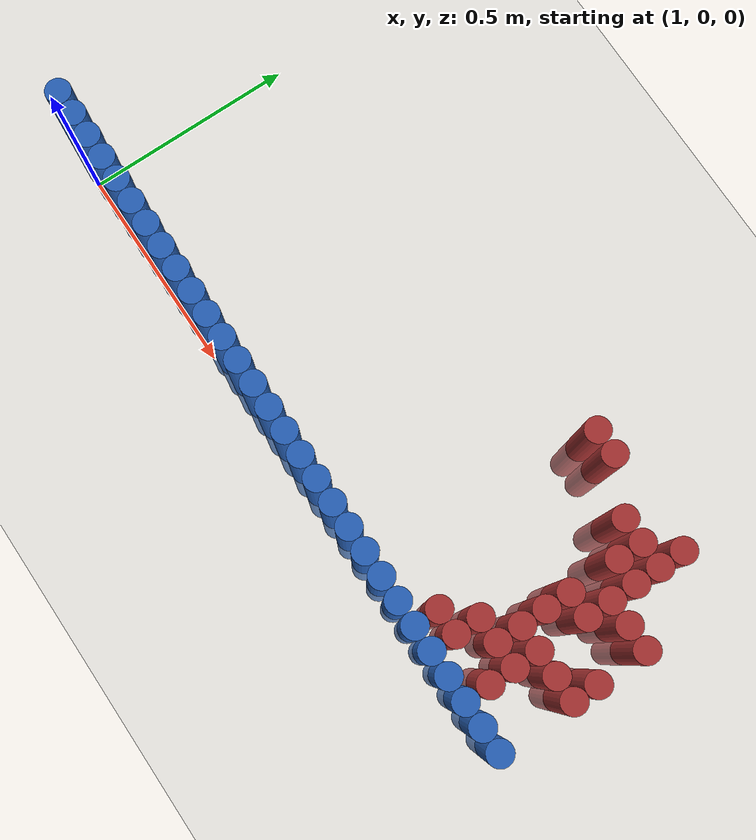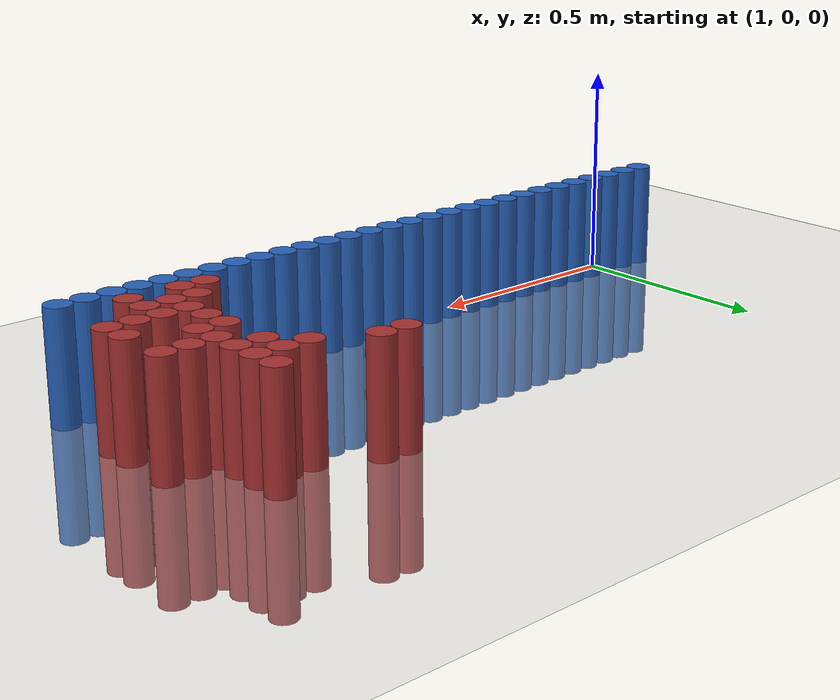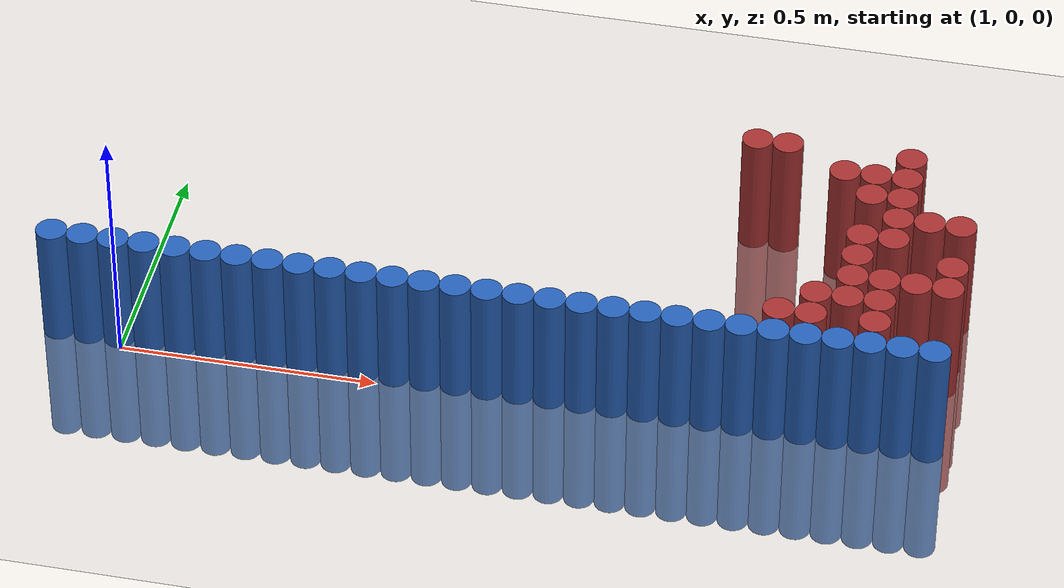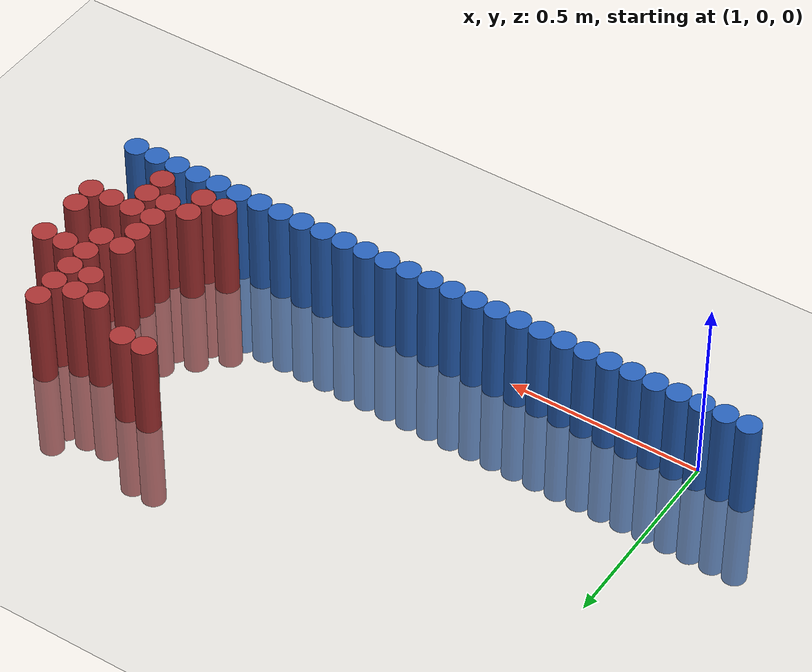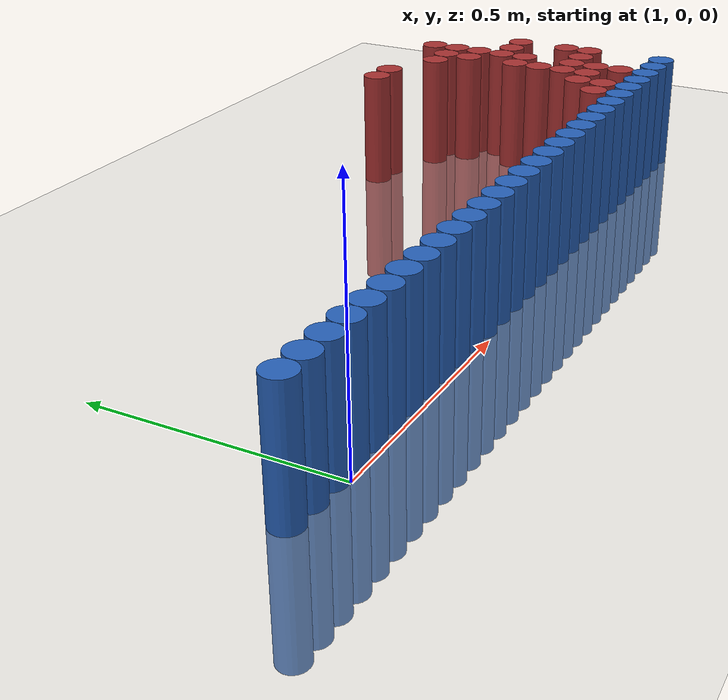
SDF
<sdf version="1.6">
 <world name="default">
  <model name="ground_plane">
   <static>1</static>
   <link name="link">
    <collision name="collision">
     <geometry><plane><normal>0 0 1</normal><size>100 100</size></plane></geometry>
     <surface><friction><ode><mu>100</mu><mu2>50</mu2></ode></friction></surface>
    </collision>
    <visual name="visual">
     <cast_shadows>0</cast_shadows>
     <geometry><plane><normal>0 0 1</normal><size>100 100</size></plane></geometry>
     <material>
      <script><uri>file://media/materials/scripts/gazebo.material</uri><name>Gazebo/Grey</name></script>
     </material>
    </visual>
   </link>
  </model>
  <model name="unit_cylinder_55">
   <static>1</static>
   <pose>0.870000 0.030000 0.000000 0.000000 0.000000 0.000000</pose>
   <link name="link">
    <inertial>
     <mass>1</mass>
     <inertia><ixx>0.145833</ixx><ixy>0</ixy><ixz>0</ixz><iyy>0.145833</iyy><iyz>0</iyz><izz>0.125</izz></inertia>
    </inertial>
    <collision name="collision">
     <geometry><cylinder><radius>0.030000</radius><length>0.5</length></cylinder></geometry>
    </collision>
    <visual name="visual">
     <geometry><cylinder><radius>0.030000</radius><length>0.5</length></cylinder></geometry>
     <material>
      <ambient>0.152000 0.379000 0.720000 1</ambient>
      <diffuse>0.152000 0.379000 0.720000 1</diffuse>
     </material>
     <material>
      <script><name>Gazebo/Grey</name><uri>file://media/materials/scripts/gazebo.material</uri></script>
     </material>
    </visual>
   </link>
  </model>
  <model name="unit_cylinder_57">
   <static>1</static>
   <pose>0.930000 0.030000 0.000000 0.000000 0.000000 0.000000</pose>
   <link name="link">
    <inertial>
     <mass>1</mass>
     <inertia><ixx>0.145833</ixx><ixy>0</ixy><ixz>0</ixz><iyy>0.145833</iyy><iyz>0</iyz><izz>0.125</izz></inertia>
    </inertial>
    <collision name="collision">
     <geometry><cylinder><radius>0.030000</radius><length>0.5</length></cylinder></geometry>
    </collision>
    <visual name="visual">
     <geometry><cylinder><radius>0.030000</radius><length>0.5</length></cylinder></geometry>
     <material>
      <ambient>0.152000 0.379000 0.720000 1</ambient>
      <diffuse>0.152000 0.379000 0.720000 1</diffuse>
     </material>
     <material>
      <script><name>Gazebo/Grey</name><uri>file://media/materials/scripts/gazebo.material</uri></script>
     </material>
    </visual>
   </link>
  </model>
  <model name="unit_cylinder_59">
   <static>1</static>
   <pose>0.990000 0.030000 0.000000 0.000000 0.000000 0.000000</pose>
   <link name="link">
    <inertial>
     <mass>1</mass>
     <inertia><ixx>0.145833</ixx><ixy>0</ixy><ixz>0</ixz><iyy>0.145833</iyy><iyz>0</iyz><izz>0.125</izz></inertia>
    </inertial>
    <collision name="collision">
     <geometry><cylinder><radius>0.030000</radius><length>0.5</length></cylinder></geometry>
    </collision>
    <visual name="visual">
     <geometry><cylinder><radius>0.030000</radius><length>0.5</length></cylinder></geometry>
     <material>
      <ambient>0.152000 0.379000 0.720000 1</ambient>
      <diffuse>0.152000 0.379000 0.720000 1</diffuse>
     </material>
     <material>
      <script><name>Gazebo/Grey</name><uri>file://media/materials/scripts/gazebo.material</uri></script>
     </material>
    </visual>
   </link>
  </model>
  <model name="unit_cylinder_61">
   <static>1</static>
   <pose>1.050000 0.030000 0.000000 0.000000 0.000000 0.000000</pose>
   <link name="link">
    <inertial>
     <mass>1</mass>
     <inertia><ixx>0.145833</ixx><ixy>0</ixy><ixz>0</ixz><iyy>0.145833</iyy><iyz>0</iyz><izz>0.125</izz></inertia>
    </inertial>
    <collision name="collision">
     <geometry><cylinder><radius>0.030000</radius><length>0.5</length></cylinder></geometry>
    </collision>
    <visual name="visual">
     <geometry><cylinder><radius>0.030000</radius><length>0.5</length></cylinder></geometry>
     <material>
      <ambient>0.152000 0.379000 0.720000 1</ambient>
      <diffuse>0.152000 0.379000 0.720000 1</diffuse>
     </material>
     <material>
      <script><name>Gazebo/Grey</name><uri>file://media/materials/scripts/gazebo.material</uri></script>
     </material>
    </visual>
   </link>
  </model>
  <model name="unit_cylinder_63">
   <static>1</static>
   <pose>1.110000 0.030000 0.000000 0.000000 0.000000 0.000000</pose>
   <link name="link">
    <inertial>
     <mass>1</mass>
     <inertia><ixx>0.145833</ixx><ixy>0</ixy><ixz>0</ixz><iyy>0.145833</iyy><iyz>0</iyz><izz>0.125</izz></inertia>
    </inertial>
    <collision name="collision">
     <geometry><cylinder><radius>0.030000</radius><length>0.5</length></cylinder></geometry>
    </collision>
    <visual name="visual">
     <geometry><cylinder><radius>0.030000</radius><length>0.5</length></cylinder></geometry>
     <material>
      <ambient>0.152000 0.379000 0.720000 1</ambient>
      <diffuse>0.152000 0.379000 0.720000 1</diffuse>
     </material>
     <material>
      <script><name>Gazebo/Grey</name><uri>file://media/materials/scripts/gazebo.material</uri></script>
     </material>
    </visual>
   </link>
  </model>
  <model name="unit_cylinder_65">
   <static>1</static>
   <pose>1.170000 0.030000 0.000000 0.000000 0.000000 0.000000</pose>
   <link name="link">
    <inertial>
     <mass>1</mass>
     <inertia><ixx>0.145833</ixx><ixy>0</ixy><ixz>0</ixz><iyy>0.145833</iyy><iyz>0</iyz><izz>0.125</izz></inertia>
    </inertial>
    <collision name="collision">
     <geometry><cylinder><radius>0.030000</radius><length>0.5</length></cylinder></geometry>
    </collision>
    <visual name="visual">
     <geometry><cylinder><radius>0.030000</radius><length>0.5</length></cylinder></geometry>
     <material>
      <ambient>0.152000 0.379000 0.720000 1</ambient>
      <diffuse>0.152000 0.379000 0.720000 1</diffuse>
     </material>
     <material>
      <script><name>Gazebo/Grey</name><uri>file://media/materials/scripts/gazebo.material</uri></script>
     </material>
    </visual>
   </link>
  </model>
  <model name="unit_cylinder_67">
   <static>1</static>
   <pose>1.230000 0.030000 0.000000 0.000000 0.000000 0.000000</pose>
   <link name="link">
    <inertial>
     <mass>1</mass>
     <inertia><ixx>0.145833</ixx><ixy>0</ixy><ixz>0</ixz><iyy>0.145833</iyy><iyz>0</iyz><izz>0.125</izz></inertia>
    </inertial>
    <collision name="collision">
     <geometry><cylinder><radius>0.030000</radius><length>0.5</length></cylinder></geometry>
    </collision>
    <visual name="visual">
     <geometry><cylinder><radius>0.030000</radius><length>0.5</length></cylinder></geometry>
     <material>
      <ambient>0.152000 0.379000 0.720000 1</ambient>
      <diffuse>0.152000 0.379000 0.720000 1</diffuse>
     </material>
     <material>
      <script><name>Gazebo/Grey</name><uri>file://media/materials/scripts/gazebo.material</uri></script>
     </material>
    </visual>
   </link>
  </model>
  <model name="unit_cylinder_69">
   <static>1</static>
   <pose>1.290000 0.030000 0.000000 0.000000 0.000000 0.000000</pose>
   <link name="link">
    <inertial>
     <mass>1</mass>
     <inertia><ixx>0.145833</ixx><ixy>0</ixy><ixz>0</ixz><iyy>0.145833</iyy><iyz>0</iyz><izz>0.125</izz></inertia>
    </inertial>
    <collision name="collision">
     <geometry><cylinder><radius>0.030000</radius><length>0.5</length></cylinder></geometry>
    </collision>
    <visual name="visual">
     <geometry><cylinder><radius>0.030000</radius><length>0.5</length></cylinder></geometry>
     <material>
      <ambient>0.152000 0.379000 0.720000 1</ambient>
      <diffuse>0.152000 0.379000 0.720000 1</diffuse>
     </material>
     <material>
      <script><name>Gazebo/Grey</name><uri>file://media/materials/scripts/gazebo.material</uri></script>
     </material>
    </visual>
   </link>
  </model>
  <model name="unit_cylinder_71">
   <static>1</static>
   <pose>1.350000 0.030000 0.000000 0.000000 0.000000 0.000000</pose>
   <link name="link">
    <inertial>
     <mass>1</mass>
     <inertia><ixx>0.145833</ixx><ixy>0</ixy><ixz>0</ixz><iyy>0.145833</iyy><iyz>0</iyz><izz>0.125</izz></inertia>
    </inertial>
    <collision name="collision">
     <geometry><cylinder><radius>0.030000</radius><length>0.5</length></cylinder></geometry>
    </collision>
    <visual name="visual">
     <geometry><cylinder><radius>0.030000</radius><length>0.5</length></cylinder></geometry>
     <material>
      <ambient>0.152000 0.379000 0.720000 1</ambient>
      <diffuse>0.152000 0.379000 0.720000 1</diffuse>
     </material>
     <material>
      <script><name>Gazebo/Grey</name><uri>file://media/materials/scripts/gazebo.material</uri></script>
     </material>
    </visual>
   </link>
  </model>
  <model name="unit_cylinder_73">
   <static>1</static>
   <pose>1.410000 0.030000 0.000000 0.000000 0.000000 0.000000</pose>
   <link name="link">
    <inertial>
     <mass>1</mass>
     <inertia><ixx>0.145833</ixx><ixy>0</ixy><ixz>0</ixz><iyy>0.145833</iyy><iyz>0</iyz><izz>0.125</izz></inertia>
    </inertial>
    <collision name="collision">
     <geometry><cylinder><radius>0.030000</radius><length>0.5</length></cylinder></geometry>
    </collision>
    <visual name="visual">
     <geometry><cylinder><radius>0.030000</radius><length>0.5</length></cylinder></geometry>
     <material>
      <ambient>0.152000 0.379000 0.720000 1</ambient>
      <diffuse>0.152000 0.379000 0.720000 1</diffuse>
     </material>
     <material>
      <script><name>Gazebo/Grey</name><uri>file://media/materials/scripts/gazebo.material</uri></script>
     </material>
    </visual>
   </link>
  </model>
  <model name="unit_cylinder_75">
   <static>1</static>
   <pose>1.470000 0.030000 0.000000 0.000000 0.000000 0.000000</pose>
   <link name="link">
    <inertial>
     <mass>1</mass>
     <inertia><ixx>0.145833</ixx><ixy>0</ixy><ixz>0</ixz><iyy>0.145833</iyy><iyz>0</iyz><izz>0.125</izz></inertia>
    </inertial>
    <collision name="collision">
     <geometry><cylinder><radius>0.030000</radius><length>0.5</length></cylinder></geometry>
    </collision>
    <visual name="visual">
     <geometry><cylinder><radius>0.030000</radius><length>0.5</length></cylinder></geometry>
     <material>
      <ambient>0.152000 0.379000 0.720000 1</ambient>
      <diffuse>0.152000 0.379000 0.720000 1</diffuse>
     </material>
     <material>
      <script><name>Gazebo/Grey</name><uri>file://media/materials/scripts/gazebo.material</uri></script>
     </material>
    </visual>
   </link>
  </model>
  <model name="unit_cylinder_77">
   <static>1</static>
   <pose>1.530000 0.030000 0.000000 0.000000 0.000000 0.000000</pose>
   <link name="link">
    <inertial>
     <mass>1</mass>
     <inertia><ixx>0.145833</ixx><ixy>0</ixy><ixz>0</ixz><iyy>0.145833</iyy><iyz>0</iyz><izz>0.125</izz></inertia>
    </inertial>
    <collision name="collision">
     <geometry><cylinder><radius>0.030000</radius><length>0.5</length></cylinder></geometry>
    </collision>
    <visual name="visual">
     <geometry><cylinder><radius>0.030000</radius><length>0.5</length></cylinder></geometry>
     <material>
      <ambient>0.152000 0.379000 0.720000 1</ambient>
      <diffuse>0.152000 0.379000 0.720000 1</diffuse>
     </material>
     <material>
      <script><name>Gazebo/Grey</name><uri>file://media/materials/scripts/gazebo.material</uri></script>
     </material>
    </visual>
   </link>
  </model>
  <model name="unit_cylinder_79">
   <static>1</static>
   <pose>1.590000 0.030000 0.000000 0.000000 0.000000 0.000000</pose>
   <link name="link">
    <inertial>
     <mass>1</mass>
     <inertia><ixx>0.145833</ixx><ixy>0</ixy><ixz>0</ixz><iyy>0.145833</iyy><iyz>0</iyz><izz>0.125</izz></inertia>
    </inertial>
    <collision name="collision">
     <geometry><cylinder><radius>0.030000</radius><length>0.5</length></cylinder></geometry>
    </collision>
    <visual name="visual">
     <geometry><cylinder><radius>0.030000</radius><length>0.5</length></cylinder></geometry>
     <material>
      <ambient>0.152000 0.379000 0.720000 1</ambient>
      <diffuse>0.152000 0.379000 0.720000 1</diffuse>
     </material>
     <material>
      <script><name>Gazebo/Grey</name><uri>file://media/materials/scripts/gazebo.material</uri></script>
     </material>
    </visual>
   </link>
  </model>
  <model name="unit_cylinder_81">
   <static>1</static>
   <pose>1.650000 0.030000 0.000000 0.000000 0.000000 0.000000</pose>
   <link name="link">
    <inertial>
     <mass>1</mass>
     <inertia><ixx>0.145833</ixx><ixy>0</ixy><ixz>0</ixz><iyy>0.145833</iyy><iyz>0</iyz><izz>0.125</izz></inertia>
    </inertial>
    <collision name="collision">
     <geometry><cylinder><radius>0.030000</radius><length>0.5</length></cylinder></geometry>
    </collision>
    <visual name="visual">
     <geometry><cylinder><radius>0.030000</radius><length>0.5</length></cylinder></geometry>
     <material>
      <ambient>0.152000 0.379000 0.720000 1</ambient>
      <diffuse>0.152000 0.379000 0.720000 1</diffuse>
     </material>
     <material>
      <script><name>Gazebo/Grey</name><uri>file://media/materials/scripts/gazebo.material</uri></script>
     </material>
    </visual>
   </link>
  </model>
  <model name="unit_cylinder_83">
   <static>1</static>
   <pose>1.710000 0.030000 0.000000 0.000000 0.000000 0.000000</pose>
   <link name="link">
    <inertial>
     <mass>1</mass>
     <inertia><ixx>0.145833</ixx><ixy>0</ixy><ixz>0</ixz><iyy>0.145833</iyy><iyz>0</iyz><izz>0.125</izz></inertia>
    </inertial>
    <collision name="collision">
     <geometry><cylinder><radius>0.030000</radius><length>0.5</length></cylinder></geometry>
    </collision>
    <visual name="visual">
     <geometry><cylinder><radius>0.030000</radius><length>0.5</length></cylinder></geometry>
     <material>
      <ambient>0.152000 0.379000 0.720000 1</ambient>
      <diffuse>0.152000 0.379000 0.720000 1</diffuse>
     </material>
     <material>
      <script><name>Gazebo/Grey</name><uri>file://media/materials/scripts/gazebo.material</uri></script>
     </material>
    </visual>
   </link>
  </model>
  <model name="unit_cylinder_85">
   <static>1</static>
   <pose>1.770000 0.030000 0.000000 0.000000 0.000000 0.000000</pose>
   <link name="link">
    <inertial>
     <mass>1</mass>
     <inertia><ixx>0.145833</ixx><ixy>0</ixy><ixz>0</ixz><iyy>0.145833</iyy><iyz>0</iyz><izz>0.125</izz></inertia>
    </inertial>
    <collision name="collision">
     <geometry><cylinder><radius>0.030000</radius><length>0.5</length></cylinder></geometry>
    </collision>
    <visual name="visual">
     <geometry><cylinder><radius>0.030000</radius><length>0.5</length></cylinder></geometry>
     <material>
      <ambient>0.152000 0.379000 0.720000 1</ambient>
      <diffuse>0.152000 0.379000 0.720000 1</diffuse>
     </material>
     <material>
      <script><name>Gazebo/Grey</name><uri>file://media/materials/scripts/gazebo.material</uri></script>
     </material>
    </visual>
   </link>
  </model>
  <model name="unit_cylinder_87">
   <static>1</static>
   <pose>1.830000 0.030000 0.000000 0.000000 0.000000 0.000000</pose>
   <link name="link">
    <inertial>
     <mass>1</mass>
     <inertia><ixx>0.145833</ixx><ixy>0</ixy><ixz>0</ixz><iyy>0.145833</iyy><iyz>0</iyz><izz>0.125</izz></inertia>
    </inertial>
    <collision name="collision">
     <geometry><cylinder><radius>0.030000</radius><length>0.5</length></cylinder></geometry>
    </collision>
    <visual name="visual">
     <geometry><cylinder><radius>0.030000</radius><length>0.5</length></cylinder></geometry>
     <material>
      <ambient>0.152000 0.379000 0.720000 1</ambient>
      <diffuse>0.152000 0.379000 0.720000 1</diffuse>
     </material>
     <material>
      <script><name>Gazebo/Grey</name><uri>file://media/materials/scripts/gazebo.material</uri></script>
     </material>
    </visual>
   </link>
  </model>
  <model name="unit_cylinder_89">
   <static>1</static>
   <pose>1.890000 0.030000 0.000000 0.000000 0.000000 0.000000</pose>
   <link name="link">
    <inertial>
     <mass>1</mass>
     <inertia><ixx>0.145833</ixx><ixy>0</ixy><ixz>0</ixz><iyy>0.145833</iyy><iyz>0</iyz><izz>0.125</izz></inertia>
    </inertial>
    <collision name="collision">
     <geometry><cylinder><radius>0.030000</radius><length>0.5</length></cylinder></geometry>
    </collision>
    <visual name="visual">
     <geometry><cylinder><radius>0.030000</radius><length>0.5</length></cylinder></geometry>
     <material>
      <ambient>0.152000 0.379000 0.720000 1</ambient>
      <diffuse>0.152000 0.379000 0.720000 1</diffuse>
     </material>
     <material>
      <script><name>Gazebo/Grey</name><uri>file://media/materials/scripts/gazebo.material</uri></script>
     </material>
    </visual>
   </link>
  </model>
  <model name="unit_cylinder_91">
   <static>1</static>
   <pose>1.950000 0.030000 0.000000 0.000000 0.000000 0.000000</pose>
   <link name="link">
    <inertial>
     <mass>1</mass>
     <inertia><ixx>0.145833</ixx><ixy>0</ixy><ixz>0</ixz><iyy>0.145833</iyy><iyz>0</iyz><izz>0.125</izz></inertia>
    </inertial>
    <collision name="collision">
     <geometry><cylinder><radius>0.030000</radius><length>0.5</length></cylinder></geometry>
    </collision>
    <visual name="visual">
     <geometry><cylinder><radius>0.030000</radius><length>0.5</length></cylinder></geometry>
     <material>
      <ambient>0.152000 0.379000 0.720000 1</ambient>
      <diffuse>0.152000 0.379000 0.720000 1</diffuse>
     </material>
     <material>
      <script><name>Gazebo/Grey</name><uri>file://media/materials/scripts/gazebo.material</uri></script>
     </material>
    </visual>
   </link>
  </model>
  <model name="unit_cylinder_93">
   <static>1</static>
   <pose>2.010000 0.030000 0.000000 0.000000 0.000000 0.000000</pose>
   <link name="link">
    <inertial>
     <mass>1</mass>
     <inertia><ixx>0.145833</ixx><ixy>0</ixy><ixz>0</ixz><iyy>0.145833</iyy><iyz>0</iyz><izz>0.125</izz></inertia>
    </inertial>
    <collision name="collision">
     <geometry><cylinder><radius>0.030000</radius><length>0.5</length></cylinder></geometry>
    </collision>
    <visual name="visual">
     <geometry><cylinder><radius>0.030000</radius><length>0.5</length></cylinder></geometry>
     <material>
      <ambient>0.152000 0.379000 0.720000 1</ambient>
      <diffuse>0.152000 0.379000 0.720000 1</diffuse>
     </material>
     <material>
      <script><name>Gazebo/Grey</name><uri>file://media/materials/scripts/gazebo.material</uri></script>
     </material>
    </visual>
   </link>
  </model>
  <model name="unit_cylinder_224">
   <static>1</static>
   <pose>2.130000 0.570000 0.000000 0.000000 0.000000 0.000000</pose>
   <link name="link">
    <inertial>
     <mass>1</mass>
     <inertia><ixx>0.145833</ixx><ixy>0</ixy><ixz>0</ixz><iyy>0.145833</iyy><iyz>0</iyz><izz>0.125</izz></inertia>
    </inertial>
    <collision name="collision">
     <geometry><cylinder><radius>0.030000</radius><length>0.5</length></cylinder></geometry>
    </collision>
    <visual name="visual">
     <geometry><cylinder><radius>0.030000</radius><length>0.5</length></cylinder></geometry>
     <material>
      <ambient>0.648000 0.192000 0.192000 1</ambient>
      <diffuse>0.648000 0.192000 0.192000 1</diffuse>
     </material>
     <material>
      <script><name>Gazebo/Grey</name><uri>file://media/materials/scripts/gazebo.material</uri></script>
     </material>
    </visual>
   </link>
  </model>
  <model name="unit_cylinder_225">
   <static>1</static>
   <pose>2.190000 0.570000 0.000000 0.000000 0.000000 0.000000</pose>
   <link name="link">
    <inertial>
     <mass>1</mass>
     <inertia><ixx>0.145833</ixx><ixy>0</ixy><ixz>0</ixz><iyy>0.145833</iyy><iyz>0</iyz><izz>0.125</izz></inertia>
    </inertial>
    <collision name="collision">
     <geometry><cylinder><radius>0.030000</radius><length>0.5</length></cylinder></geometry>
    </collision>
    <visual name="visual">
     <geometry><cylinder><radius>0.030000</radius><length>0.5</length></cylinder></geometry>
     <material>
      <ambient>0.648000 0.192000 0.192000 1</ambient>
      <diffuse>0.648000 0.192000 0.192000 1</diffuse>
     </material>
     <material>
      <script><name>Gazebo/Grey</name><uri>file://media/materials/scripts/gazebo.material</uri></script>
     </material>
    </visual>
   </link>
  </model>
  <model name="unit_cylinder_226">
   <static>1</static>
   <pose>2.430000 0.570000 0.000000 0.000000 0.000000 0.000000</pose>
   <link name="link">
    <inertial>
     <mass>1</mass>
     <inertia><ixx>0.145833</ixx><ixy>0</ixy><ixz>0</ixz><iyy>0.145833</iyy><iyz>0</iyz><izz>0.125</izz></inertia>
    </inertial>
    <collision name="collision">
     <geometry><cylinder><radius>0.030000</radius><length>0.5</length></cylinder></geometry>
    </collision>
    <visual name="visual">
     <geometry><cylinder><radius>0.030000</radius><length>0.5</length></cylinder></geometry>
     <material>
      <ambient>0.648000 0.192000 0.192000 1</ambient>
      <diffuse>0.648000 0.192000 0.192000 1</diffuse>
     </material>
     <material>
      <script><name>Gazebo/Grey</name><uri>file://media/materials/scripts/gazebo.material</uri></script>
     </material>
    </visual>
   </link>
  </model>
  <model name="unit_cylinder_237">
   <static>1</static>
   <pose>2.310000 0.510000 0.000000 0.000000 0.000000 0.000000</pose>
   <link name="link">
    <inertial>
     <mass>1</mass>
     <inertia><ixx>0.145833</ixx><ixy>0</ixy><ixz>0</ixz><iyy>0.145833</iyy><iyz>0</iyz><izz>0.125</izz></inertia>
    </inertial>
    <collision name="collision">
     <geometry><cylinder><radius>0.030000</radius><length>0.5</length></cylinder></geometry>
    </collision>
    <visual name="visual">
     <geometry><cylinder><radius>0.030000</radius><length>0.5</length></cylinder></geometry>
     <material>
      <ambient>0.648000 0.192000 0.192000 1</ambient>
      <diffuse>0.648000 0.192000 0.192000 1</diffuse>
     </material>
     <material>
      <script><name>Gazebo/Grey</name><uri>file://media/materials/scripts/gazebo.material</uri></script>
     </material>
    </visual>
   </link>
  </model>
  <model name="unit_cylinder_238">
   <static>1</static>
   <pose>2.370000 0.510000 0.000000 0.000000 0.000000 0.000000</pose>
   <link name="link">
    <inertial>
     <mass>1</mass>
     <inertia><ixx>0.145833</ixx><ixy>0</ixy><ixz>0</ixz><iyy>0.145833</iyy><iyz>0</iyz><izz>0.125</izz></inertia>
    </inertial>
    <collision name="collision">
     <geometry><cylinder><radius>0.030000</radius><length>0.5</length></cylinder></geometry>
    </collision>
    <visual name="visual">
     <geometry><cylinder><radius>0.030000</radius><length>0.5</length></cylinder></geometry>
     <material>
      <ambient>0.648000 0.192000 0.192000 1</ambient>
      <diffuse>0.648000 0.192000 0.192000 1</diffuse>
     </material>
     <material>
      <script><name>Gazebo/Grey</name><uri>file://media/materials/scripts/gazebo.material</uri></script>
     </material>
    </visual>
   </link>
  </model>
  <model name="unit_cylinder_239">
   <static>1</static>
   <pose>2.430000 0.510000 0.000000 0.000000 0.000000 0.000000</pose>
   <link name="link">
    <inertial>
     <mass>1</mass>
     <inertia><ixx>0.145833</ixx><ixy>0</ixy><ixz>0</ixz><iyy>0.145833</iyy><iyz>0</iyz><izz>0.125</izz></inertia>
    </inertial>
    <collision name="collision">
     <geometry><cylinder><radius>0.030000</radius><length>0.5</length></cylinder></geometry>
    </collision>
    <visual name="visual">
     <geometry><cylinder><radius>0.030000</radius><length>0.5</length></cylinder></geometry>
     <material>
      <ambient>0.648000 0.192000 0.192000 1</ambient>
      <diffuse>0.648000 0.192000 0.192000 1</diffuse>
     </material>
     <material>
      <script><name>Gazebo/Grey</name><uri>file://media/materials/scripts/gazebo.material</uri></script>
     </material>
    </visual>
   </link>
  </model>
  <model name="unit_cylinder_245">
   <static>1</static>
   <pose>2.370000 0.450000 0.000000 0.000000 0.000000 0.000000</pose>
   <link name="link">
    <inertial>
     <mass>1</mass>
     <inertia><ixx>0.145833</ixx><ixy>0</ixy><ixz>0</ixz><iyy>0.145833</iyy><iyz>0</iyz><izz>0.125</izz></inertia>
    </inertial>
    <collision name="collision">
     <geometry><cylinder><radius>0.030000</radius><length>0.5</length></cylinder></geometry>
    </collision>
    <visual name="visual">
     <geometry><cylinder><radius>0.030000</radius><length>0.5</length></cylinder></geometry>
     <material>
      <ambient>0.648000 0.192000 0.192000 1</ambient>
      <diffuse>0.648000 0.192000 0.192000 1</diffuse>
     </material>
     <material>
      <script><name>Gazebo/Grey</name><uri>file://media/materials/scripts/gazebo.material</uri></script>
     </material>
    </visual>
   </link>
  </model>
  <model name="unit_cylinder_246">
   <static>1</static>
   <pose>2.430000 0.450000 0.000000 0.000000 0.000000 0.000000</pose>
   <link name="link">
    <inertial>
     <mass>1</mass>
     <inertia><ixx>0.145833</ixx><ixy>0</ixy><ixz>0</ixz><iyy>0.145833</iyy><iyz>0</iyz><izz>0.125</izz></inertia>
    </inertial>
    <collision name="collision">
     <geometry><cylinder><radius>0.030000</radius><length>0.5</length></cylinder></geometry>
    </collision>
    <visual name="visual">
     <geometry><cylinder><radius>0.030000</radius><length>0.5</length></cylinder></geometry>
     <material>
      <ambient>0.648000 0.192000 0.192000 1</ambient>
      <diffuse>0.648000 0.192000 0.192000 1</diffuse>
     </material>
     <material>
      <script><name>Gazebo/Grey</name><uri>file://media/materials/scripts/gazebo.material</uri></script>
     </material>
    </visual>
   </link>
  </model>
  <model name="unit_cylinder_251">
   <static>1</static>
   <pose>2.430000 0.390000 0.000000 0.000000 0.000000 0.000000</pose>
   <link name="link">
    <inertial>
     <mass>1</mass>
     <inertia><ixx>0.145833</ixx><ixy>0</ixy><ixz>0</ixz><iyy>0.145833</iyy><iyz>0</iyz><izz>0.125</izz></inertia>
    </inertial>
    <collision name="collision">
     <geometry><cylinder><radius>0.030000</radius><length>0.5</length></cylinder></geometry>
    </collision>
    <visual name="visual">
     <geometry><cylinder><radius>0.030000</radius><length>0.5</length></cylinder></geometry>
     <material>
      <ambient>0.648000 0.192000 0.192000 1</ambient>
      <diffuse>0.648000 0.192000 0.192000 1</diffuse>
     </material>
     <material>
      <script><name>Gazebo/Grey</name><uri>file://media/materials/scripts/gazebo.material</uri></script>
     </material>
    </visual>
   </link>
  </model>
  <model name="unit_cylinder_252">
   <static>1</static>
   <pose>2.490000 0.390000 0.000000 0.000000 0.000000 0.000000</pose>
   <link name="link">
    <inertial>
     <mass>1</mass>
     <inertia><ixx>0.145833</ixx><ixy>0</ixy><ixz>0</ixz><iyy>0.145833</iyy><iyz>0</iyz><izz>0.125</izz></inertia>
    </inertial>
    <collision name="collision">
     <geometry><cylinder><radius>0.030000</radius><length>0.5</length></cylinder></geometry>
    </collision>
    <visual name="visual">
     <geometry><cylinder><radius>0.030000</radius><length>0.5</length></cylinder></geometry>
     <material>
      <ambient>0.648000 0.192000 0.192000 1</ambient>
      <diffuse>0.648000 0.192000 0.192000 1</diffuse>
     </material>
     <material>
      <script><name>Gazebo/Grey</name><uri>file://media/materials/scripts/gazebo.material</uri></script>
     </material>
    </visual>
   </link>
  </model>
  <model name="unit_cylinder_253">
   <static>1</static>
   <pose>2.550000 0.390000 0.000000 0.000000 0.000000 0.000000</pose>
   <link name="link">
    <inertial>
     <mass>1</mass>
     <inertia><ixx>0.145833</ixx><ixy>0</ixy><ixz>0</ixz><iyy>0.145833</iyy><iyz>0</iyz><izz>0.125</izz></inertia>
    </inertial>
    <collision name="collision">
     <geometry><cylinder><radius>0.030000</radius><length>0.5</length></cylinder></geometry>
    </collision>
    <visual name="visual">
     <geometry><cylinder><radius>0.030000</radius><length>0.5</length></cylinder></geometry>
     <material>
      <ambient>0.648000 0.192000 0.192000 1</ambient>
      <diffuse>0.648000 0.192000 0.192000 1</diffuse>
     </material>
     <material>
      <script><name>Gazebo/Grey</name><uri>file://media/materials/scripts/gazebo.material</uri></script>
     </material>
    </visual>
   </link>
  </model>
  <model name="unit_cylinder_257">
   <static>1</static>
   <pose>2.370000 0.330000 0.000000 0.000000 0.000000 0.000000</pose>
   <link name="link">
    <inertial>
     <mass>1</mass>
     <inertia><ixx>0.145833</ixx><ixy>0</ixy><ixz>0</ixz><iyy>0.145833</iyy><iyz>0</iyz><izz>0.125</izz></inertia>
    </inertial>
    <collision name="collision">
     <geometry><cylinder><radius>0.030000</radius><length>0.5</length></cylinder></geometry>
    </collision>
    <visual name="visual">
     <geometry><cylinder><radius>0.030000</radius><length>0.5</length></cylinder></geometry>
     <material>
      <ambient>0.648000 0.192000 0.192000 1</ambient>
      <diffuse>0.648000 0.192000 0.192000 1</diffuse>
     </material>
     <material>
      <script><name>Gazebo/Grey</name><uri>file://media/materials/scripts/gazebo.material</uri></script>
     </material>
    </visual>
   </link>
  </model>
  <model name="unit_cylinder_258">
   <static>1</static>
   <pose>2.430000 0.330000 0.000000 0.000000 0.000000 0.000000</pose>
   <link name="link">
    <inertial>
     <mass>1</mass>
     <inertia><ixx>0.145833</ixx><ixy>0</ixy><ixz>0</ixz><iyy>0.145833</iyy><iyz>0</iyz><izz>0.125</izz></inertia>
    </inertial>
    <collision name="collision">
     <geometry><cylinder><radius>0.030000</radius><length>0.5</length></cylinder></geometry>
    </collision>
    <visual name="visual">
     <geometry><cylinder><radius>0.030000</radius><length>0.5</length></cylinder></geometry>
     <material>
      <ambient>0.648000 0.192000 0.192000 1</ambient>
      <diffuse>0.648000 0.192000 0.192000 1</diffuse>
     </material>
     <material>
      <script><name>Gazebo/Grey</name><uri>file://media/materials/scripts/gazebo.material</uri></script>
     </material>
    </visual>
   </link>
  </model>
  <model name="unit_cylinder_261">
   <static>1</static>
   <pose>2.370000 0.270000 0.000000 0.000000 0.000000 0.000000</pose>
   <link name="link">
    <inertial>
     <mass>1</mass>
     <inertia><ixx>0.145833</ixx><ixy>0</ixy><ixz>0</ixz><iyy>0.145833</iyy><iyz>0</iyz><izz>0.125</izz></inertia>
    </inertial>
    <collision name="collision">
     <geometry><cylinder><radius>0.030000</radius><length>0.5</length></cylinder></geometry>
    </collision>
    <visual name="visual">
     <geometry><cylinder><radius>0.030000</radius><length>0.5</length></cylinder></geometry>
     <material>
      <ambient>0.648000 0.192000 0.192000 1</ambient>
      <diffuse>0.648000 0.192000 0.192000 1</diffuse>
     </material>
     <material>
      <script><name>Gazebo/Grey</name><uri>file://media/materials/scripts/gazebo.material</uri></script>
     </material>
    </visual>
   </link>
  </model>
  <model name="unit_cylinder_262">
   <static>1</static>
   <pose>2.550000 0.270000 0.000000 0.000000 0.000000 0.000000</pose>
   <link name="link">
    <inertial>
     <mass>1</mass>
     <inertia><ixx>0.145833</ixx><ixy>0</ixy><ixz>0</ixz><iyy>0.145833</iyy><iyz>0</iyz><izz>0.125</izz></inertia>
    </inertial>
    <collision name="collision">
     <geometry><cylinder><radius>0.030000</radius><length>0.5</length></cylinder></geometry>
    </collision>
    <visual name="visual">
     <geometry><cylinder><radius>0.030000</radius><length>0.5</length></cylinder></geometry>
     <material>
      <ambient>0.648000 0.192000 0.192000 1</ambient>
      <diffuse>0.648000 0.192000 0.192000 1</diffuse>
     </material>
     <material>
      <script><name>Gazebo/Grey</name><uri>file://media/materials/scripts/gazebo.material</uri></script>
     </material>
    </visual>
   </link>
  </model>
  <model name="unit_cylinder_265">
   <static>1</static>
   <pose>2.370000 0.210000 0.000000 0.000000 0.000000 0.000000</pose>
   <link name="link">
    <inertial>
     <mass>1</mass>
     <inertia><ixx>0.145833</ixx><ixy>0</ixy><ixz>0</ixz><iyy>0.145833</iyy><iyz>0</iyz><izz>0.125</izz></inertia>
    </inertial>
    <collision name="collision">
     <geometry><cylinder><radius>0.030000</radius><length>0.5</length></cylinder></geometry>
    </collision>
    <visual name="visual">
     <geometry><cylinder><radius>0.030000</radius><length>0.5</length></cylinder></geometry>
     <material>
      <ambient>0.648000 0.192000 0.192000 1</ambient>
      <diffuse>0.648000 0.192000 0.192000 1</diffuse>
     </material>
     <material>
      <script><name>Gazebo/Grey</name><uri>file://media/materials/scripts/gazebo.material</uri></script>
     </material>
    </visual>
   </link>
  </model>
  <model name="unit_cylinder_266">
   <static>1</static>
   <pose>2.430000 0.210000 0.000000 0.000000 0.000000 0.000000</pose>
   <link name="link">
    <inertial>
     <mass>1</mass>
     <inertia><ixx>0.145833</ixx><ixy>0</ixy><ixz>0</ixz><iyy>0.145833</iyy><iyz>0</iyz><izz>0.125</izz></inertia>
    </inertial>
    <collision name="collision">
     <geometry><cylinder><radius>0.030000</radius><length>0.5</length></cylinder></geometry>
    </collision>
    <visual name="visual">
     <geometry><cylinder><radius>0.030000</radius><length>0.5</length></cylinder></geometry>
     <material>
      <ambient>0.648000 0.192000 0.192000 1</ambient>
      <diffuse>0.648000 0.192000 0.192000 1</diffuse>
     </material>
     <material>
      <script><name>Gazebo/Grey</name><uri>file://media/materials/scripts/gazebo.material</uri></script>
     </material>
    </visual>
   </link>
  </model>
  <model name="unit_cylinder_267">
   <static>1</static>
   <pose>2.490000 0.210000 0.000000 0.000000 0.000000 0.000000</pose>
   <link name="link">
    <inertial>
     <mass>1</mass>
     <inertia><ixx>0.145833</ixx><ixy>0</ixy><ixz>0</ixz><iyy>0.145833</iyy><iyz>0</iyz><izz>0.125</izz></inertia>
    </inertial>
    <collision name="collision">
     <geometry><cylinder><radius>0.030000</radius><length>0.5</length></cylinder></geometry>
    </collision>
    <visual name="visual">
     <geometry><cylinder><radius>0.030000</radius><length>0.5</length></cylinder></geometry>
     <material>
      <ambient>0.648000 0.192000 0.192000 1</ambient>
      <diffuse>0.648000 0.192000 0.192000 1</diffuse>
     </material>
     <material>
      <script><name>Gazebo/Grey</name><uri>file://media/materials/scripts/gazebo.material</uri></script>
     </material>
    </visual>
   </link>
  </model>
  <model name="unit_cylinder_268">
   <static>1</static>
   <pose>2.550000 0.210000 0.000000 0.000000 0.000000 0.000000</pose>
   <link name="link">
    <inertial>
     <mass>1</mass>
     <inertia><ixx>0.145833</ixx><ixy>0</ixy><ixz>0</ixz><iyy>0.145833</iyy><iyz>0</iyz><izz>0.125</izz></inertia>
    </inertial>
    <collision name="collision">
     <geometry><cylinder><radius>0.030000</radius><length>0.5</length></cylinder></geometry>
    </collision>
    <visual name="visual">
     <geometry><cylinder><radius>0.030000</radius><length>0.5</length></cylinder></geometry>
     <material>
      <ambient>0.648000 0.192000 0.192000 1</ambient>
      <diffuse>0.648000 0.192000 0.192000 1</diffuse>
     </material>
     <material>
      <script><name>Gazebo/Grey</name><uri>file://media/materials/scripts/gazebo.material</uri></script>
     </material>
    </visual>
   </link>
  </model>
  <model name="unit_cylinder_273">
   <static>1</static>
   <pose>2.310000 0.150000 0.000000 0.000000 0.000000 0.000000</pose>
   <link name="link">
    <inertial>
     <mass>1</mass>
     <inertia><ixx>0.145833</ixx><ixy>0</ixy><ixz>0</ixz><iyy>0.145833</iyy><iyz>0</iyz><izz>0.125</izz></inertia>
    </inertial>
    <collision name="collision">
     <geometry><cylinder><radius>0.030000</radius><length>0.5</length></cylinder></geometry>
    </collision>
    <visual name="visual">
     <geometry><cylinder><radius>0.030000</radius><length>0.5</length></cylinder></geometry>
     <material>
      <ambient>0.648000 0.192000 0.192000 1</ambient>
      <diffuse>0.648000 0.192000 0.192000 1</diffuse>
     </material>
     <material>
      <script><name>Gazebo/Grey</name><uri>file://media/materials/scripts/gazebo.material</uri></script>
     </material>
    </visual>
   </link>
  </model>
  <model name="unit_cylinder_274">
   <static>1</static>
   <pose>2.370000 0.150000 0.000000 0.000000 0.000000 0.000000</pose>
   <link name="link">
    <inertial>
     <mass>1</mass>
     <inertia><ixx>0.145833</ixx><ixy>0</ixy><ixz>0</ixz><iyy>0.145833</iyy><iyz>0</iyz><izz>0.125</izz></inertia>
    </inertial>
    <collision name="collision">
     <geometry><cylinder><radius>0.030000</radius><length>0.5</length></cylinder></geometry>
    </collision>
    <visual name="visual">
     <geometry><cylinder><radius>0.030000</radius><length>0.5</length></cylinder></geometry>
     <material>
      <ambient>0.648000 0.192000 0.192000 1</ambient>
      <diffuse>0.648000 0.192000 0.192000 1</diffuse>
     </material>
     <material>
      <script><name>Gazebo/Grey</name><uri>file://media/materials/scripts/gazebo.material</uri></script>
     </material>
    </visual>
   </link>
  </model>
  <model name="unit_cylinder_275">
   <static>1</static>
   <pose>2.430000 0.150000 0.000000 0.000000 0.000000 0.000000</pose>
   <link name="link">
    <inertial>
     <mass>1</mass>
     <inertia><ixx>0.145833</ixx><ixy>0</ixy><ixz>0</ixz><iyy>0.145833</iyy><iyz>0</iyz><izz>0.125</izz></inertia>
    </inertial>
    <collision name="collision">
     <geometry><cylinder><radius>0.030000</radius><length>0.5</length></cylinder></geometry>
    </collision>
    <visual name="visual">
     <geometry><cylinder><radius>0.030000</radius><length>0.5</length></cylinder></geometry>
     <material>
      <ambient>0.648000 0.192000 0.192000 1</ambient>
      <diffuse>0.648000 0.192000 0.192000 1</diffuse>
     </material>
     <material>
      <script><name>Gazebo/Grey</name><uri>file://media/materials/scripts/gazebo.material</uri></script>
     </material>
    </visual>
   </link>
  </model>
  <model name="unit_cylinder_284">
   <static>1</static>
   <pose>2.250000 0.090000 0.000000 0.000000 0.000000 0.000000</pose>
   <link name="link">
    <inertial>
     <mass>1</mass>
     <inertia><ixx>0.145833</ixx><ixy>0</ixy><ixz>0</ixz><iyy>0.145833</iyy><iyz>0</iyz><izz>0.125</izz></inertia>
    </inertial>
    <collision name="collision">
     <geometry><cylinder><radius>0.030000</radius><length>0.5</length></cylinder></geometry>
    </collision>
    <visual name="visual">
     <geometry><cylinder><radius>0.030000</radius><length>0.5</length></cylinder></geometry>
     <material>
      <ambient>0.648000 0.192000 0.192000 1</ambient>
      <diffuse>0.648000 0.192000 0.192000 1</diffuse>
     </material>
     <material>
      <script><name>Gazebo/Grey</name><uri>file://media/materials/scripts/gazebo.material</uri></script>
     </material>
    </visual>
   </link>
  </model>
  <model name="unit_cylinder_285">
   <static>1</static>
   <pose>2.310000 0.090000 0.000000 0.000000 0.000000 0.000000</pose>
   <link name="link">
    <inertial>
     <mass>1</mass>
     <inertia><ixx>0.145833</ixx><ixy>0</ixy><ixz>0</ixz><iyy>0.145833</iyy><iyz>0</iyz><izz>0.125</izz></inertia>
    </inertial>
    <collision name="collision">
     <geometry><cylinder><radius>0.030000</radius><length>0.5</length></cylinder></geometry>
    </collision>
    <visual name="visual">
     <geometry><cylinder><radius>0.030000</radius><length>0.5</length></cylinder></geometry>
     <material>
      <ambient>0.648000 0.192000 0.192000 1</ambient>
      <diffuse>0.648000 0.192000 0.192000 1</diffuse>
     </material>
     <material>
      <script><name>Gazebo/Grey</name><uri>file://media/materials/scripts/gazebo.material</uri></script>
     </material>
    </visual>
   </link>
  </model>
  <model name="unit_cylinder_286">
   <static>1</static>
   <pose>2.430000 0.090000 0.000000 0.000000 0.000000 0.000000</pose>
   <link name="link">
    <inertial>
     <mass>1</mass>
     <inertia><ixx>0.145833</ixx><ixy>0</ixy><ixz>0</ixz><iyy>0.145833</iyy><iyz>0</iyz><izz>0.125</izz></inertia>
    </inertial>
    <collision name="collision">
     <geometry><cylinder><radius>0.030000</radius><length>0.5</length></cylinder></geometry>
    </collision>
    <visual name="visual">
     <geometry><cylinder><radius>0.030000</radius><length>0.5</length></cylinder></geometry>
     <material>
      <ambient>0.648000 0.192000 0.192000 1</ambient>
      <diffuse>0.648000 0.192000 0.192000 1</diffuse>
     </material>
     <material>
      <script><name>Gazebo/Grey</name><uri>file://media/materials/scripts/gazebo.material</uri></script>
     </material>
    </visual>
   </link>
  </model>
  <model name="unit_cylinder_296">
   <static>1</static>
   <pose>2.070000 0.030000 0.000000 0.000000 0.000000 0.000000</pose>
   <link name="link">
    <inertial>
     <mass>1</mass>
     <inertia><ixx>0.145833</ixx><ixy>0</ixy><ixz>0</ixz><iyy>0.145833</iyy><iyz>0</iyz><izz>0.125</izz></inertia>
    </inertial>
    <collision name="collision">
     <geometry><cylinder><radius>0.030000</radius><length>0.5</length></cylinder></geometry>
    </collision>
    <visual name="visual">
     <geometry><cylinder><radius>0.030000</radius><length>0.5</length></cylinder></geometry>
     <material>
      <ambient>0.152000 0.379000 0.720000 1</ambient>
      <diffuse>0.152000 0.379000 0.720000 1</diffuse>
     </material>
     <material>
      <script><name>Gazebo/Grey</name><uri>file://media/materials/scripts/gazebo.material</uri></script>
     </material>
    </visual>
   </link>
  </model>
  <model name="unit_cylinder_297">
   <static>1</static>
   <pose>2.130000 0.030000 0.000000 0.000000 0.000000 0.000000</pose>
   <link name="link">
    <inertial>
     <mass>1</mass>
     <inertia><ixx>0.145833</ixx><ixy>0</ixy><ixz>0</ixz><iyy>0.145833</iyy><iyz>0</iyz><izz>0.125</izz></inertia>
    </inertial>
    <collision name="collision">
     <geometry><cylinder><radius>0.030000</radius><length>0.5</length></cylinder></geometry>
    </collision>
    <visual name="visual">
     <geometry><cylinder><radius>0.030000</radius><length>0.5</length></cylinder></geometry>
     <material>
      <ambient>0.152000 0.379000 0.720000 1</ambient>
      <diffuse>0.152000 0.379000 0.720000 1</diffuse>
     </material>
     <material>
      <script><name>Gazebo/Grey</name><uri>file://media/materials/scripts/gazebo.material</uri></script>
     </material>
    </visual>
   </link>
  </model>
  <model name="unit_cylinder_298">
   <static>1</static>
   <pose>2.190000 0.030000 0.000000 0.000000 0.000000 0.000000</pose>
   <link name="link">
    <inertial>
     <mass>1</mass>
     <inertia><ixx>0.145833</ixx><ixy>0</ixy><ixz>0</ixz><iyy>0.145833</iyy><iyz>0</iyz><izz>0.125</izz></inertia>
    </inertial>
    <collision name="collision">
     <geometry><cylinder><radius>0.030000</radius><length>0.5</length></cylinder></geometry>
    </collision>
    <visual name="visual">
     <geometry><cylinder><radius>0.030000</radius><length>0.5</length></cylinder></geometry>
     <material>
      <ambient>0.152000 0.379000 0.720000 1</ambient>
      <diffuse>0.152000 0.379000 0.720000 1</diffuse>
     </material>
     <material>
      <script><name>Gazebo/Grey</name><uri>file://media/materials/scripts/gazebo.material</uri></script>
     </material>
    </visual>
   </link>
  </model>
  <model name="unit_cylinder_299">
   <static>1</static>
   <pose>2.250000 0.030000 0.000000 0.000000 0.000000 0.000000</pose>
   <link name="link">
    <inertial>
     <mass>1</mass>
     <inertia><ixx>0.145833</ixx><ixy>0</ixy><ixz>0</ixz><iyy>0.145833</iyy><iyz>0</iyz><izz>0.125</izz></inertia>
    </inertial>
    <collision name="collision">
     <geometry><cylinder><radius>0.030000</radius><length>0.5</length></cylinder></geometry>
    </collision>
    <visual name="visual">
     <geometry><cylinder><radius>0.030000</radius><length>0.5</length></cylinder></geometry>
     <material>
      <ambient>0.152000 0.379000 0.720000 1</ambient>
      <diffuse>0.152000 0.379000 0.720000 1</diffuse>
     </material>
     <material>
      <script><name>Gazebo/Grey</name><uri>file://media/materials/scripts/gazebo.material</uri></script>
     </material>
    </visual>
   </link>
  </model>
  <model name="unit_cylinder_300">
   <static>1</static>
   <pose>2.310000 0.030000 0.000000 0.000000 0.000000 0.000000</pose>
   <link name="link">
    <inertial>
     <mass>1</mass>
     <inertia><ixx>0.145833</ixx><ixy>0</ixy><ixz>0</ixz><iyy>0.145833</iyy><iyz>0</iyz><izz>0.125</izz></inertia>
    </inertial>
    <collision name="collision">
     <geometry><cylinder><radius>0.030000</radius><length>0.5</length></cylinder></geometry>
    </collision>
    <visual name="visual">
     <geometry><cylinder><radius>0.030000</radius><length>0.5</length></cylinder></geometry>
     <material>
      <ambient>0.152000 0.379000 0.720000 1</ambient>
      <diffuse>0.152000 0.379000 0.720000 1</diffuse>
     </material>
     <material>
      <script><name>Gazebo/Grey</name><uri>file://media/materials/scripts/gazebo.material</uri></script>
     </material>
    </visual>
   </link>
  </model>
  <model name="unit_cylinder_301">
   <static>1</static>
   <pose>2.370000 0.030000 0.000000 0.000000 0.000000 0.000000</pose>
   <link name="link">
    <inertial>
     <mass>1</mass>
     <inertia><ixx>0.145833</ixx><ixy>0</ixy><ixz>0</ixz><iyy>0.145833</iyy><iyz>0</iyz><izz>0.125</izz></inertia>
    </inertial>
    <collision name="collision">
     <geometry><cylinder><radius>0.030000</radius><length>0.5</length></cylinder></geometry>
    </collision>
    <visual name="visual">
     <geometry><cylinder><radius>0.030000</radius><length>0.5</length></cylinder></geometry>
     <material>
      <ambient>0.152000 0.379000 0.720000 1</ambient>
      <diffuse>0.152000 0.379000 0.720000 1</diffuse>
     </material>
     <material>
      <script><name>Gazebo/Grey</name><uri>file://media/materials/scripts/gazebo.material</uri></script>
     </material>
    </visual>
   </link>
  </model>
  <model name="unit_cylinder_302">
   <static>1</static>
   <pose>2.430000 0.030000 0.000000 0.000000 0.000000 0.000000</pose>
   <link name="link">
    <inertial>
     <mass>1</mass>
     <inertia><ixx>0.145833</ixx><ixy>0</ixy><ixz>0</ixz><iyy>0.145833</iyy><iyz>0</iyz><izz>0.125</izz></inertia>
    </inertial>
    <collision name="collision">
     <geometry><cylinder><radius>0.030000</radius><length>0.5</length></cylinder></geometry>
    </collision>
    <visual name="visual">
     <geometry><cylinder><radius>0.030000</radius><length>0.5</length></cylinder></geometry>
     <material>
      <ambient>0.152000 0.379000 0.720000 1</ambient>
      <diffuse>0.152000 0.379000 0.720000 1</diffuse>
     </material>
     <material>
      <script><name>Gazebo/Grey</name><uri>file://media/materials/scripts/gazebo.material</uri></script>
     </material>
    </visual>
   </link>
  </model>
  <model name="unit_cylinder_303">
   <static>1</static>
   <pose>2.490000 0.030000 0.000000 0.000000 0.000000 0.000000</pose>
   <link name="link">
    <inertial>
     <mass>1</mass>
     <inertia><ixx>0.145833</ixx><ixy>0</ixy><ixz>0</ixz><iyy>0.145833</iyy><iyz>0</iyz><izz>0.125</izz></inertia>
    </inertial>
    <collision name="collision">
     <geometry><cylinder><radius>0.030000</radius><length>0.5</length></cylinder></geometry>
    </collision>
    <visual name="visual">
     <geometry><cylinder><radius>0.030000</radius><length>0.5</length></cylinder></geometry>
     <material>
      <ambient>0.152000 0.379000 0.720000 1</ambient>
      <diffuse>0.152000 0.379000 0.720000 1</diffuse>
     </material>
     <material>
      <script><name>Gazebo/Grey</name><uri>file://media/materials/scripts/gazebo.material</uri></script>
     </material>
    </visual>
   </link>
  </model>
  <model name="unit_cylinder_304">
   <static>1</static>
   <pose>2.550000 0.030000 0.000000 0.000000 0.000000 0.000000</pose>
   <link name="link">
    <inertial>
     <mass>1</mass>
     <inertia><ixx>0.145833</ixx><ixy>0</ixy><ixz>0</ixz><iyy>0.145833</iyy><iyz>0</iyz><izz>0.125</izz></inertia>
    </inertial>
    <collision name="collision">
     <geometry><cylinder><radius>0.030000</radius><length>0.5</length></cylinder></geometry>
    </collision>
    <visual name="visual">
     <geometry><cylinder><radius>0.030000</radius><length>0.5</length></cylinder></geometry>
     <material>
      <ambient>0.152000 0.379000 0.720000 1</ambient>
      <diffuse>0.152000 0.379000 0.720000 1</diffuse>
     </material>
     <material>
      <script><name>Gazebo/Grey</name><uri>file://media/materials/scripts/gazebo.material</uri></script>
     </material>
    </visual>
   </link>
  </model>
 </world>
</sdf>
